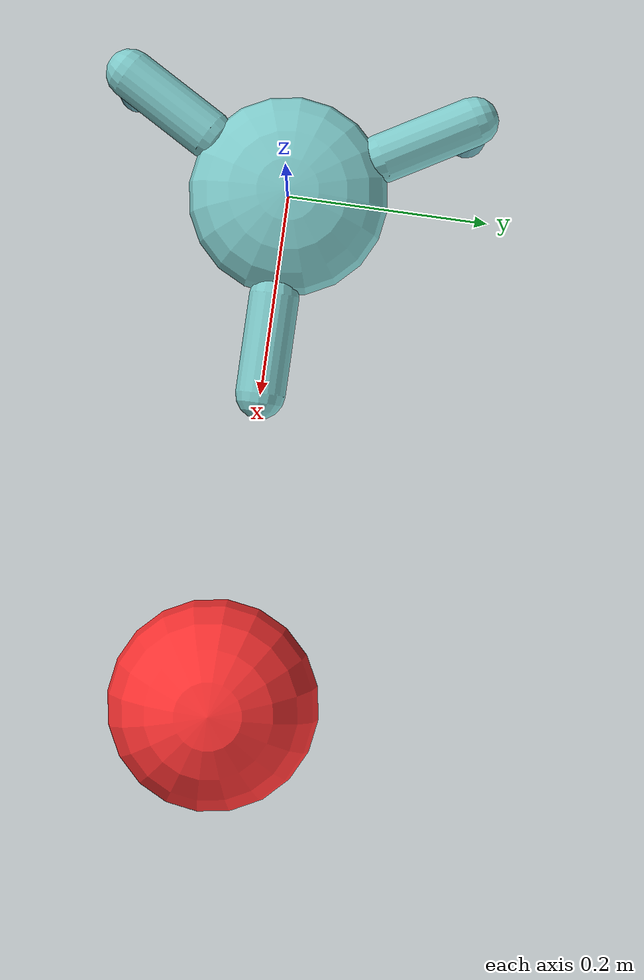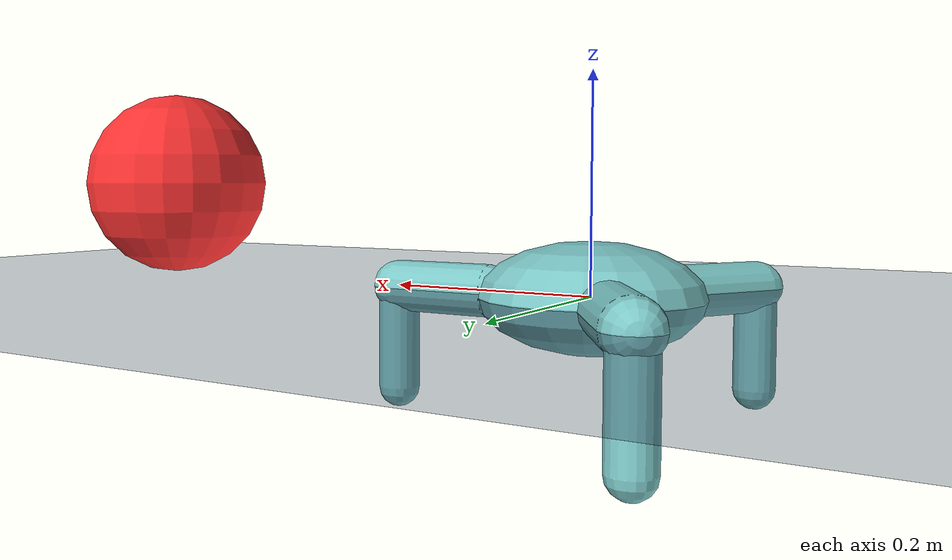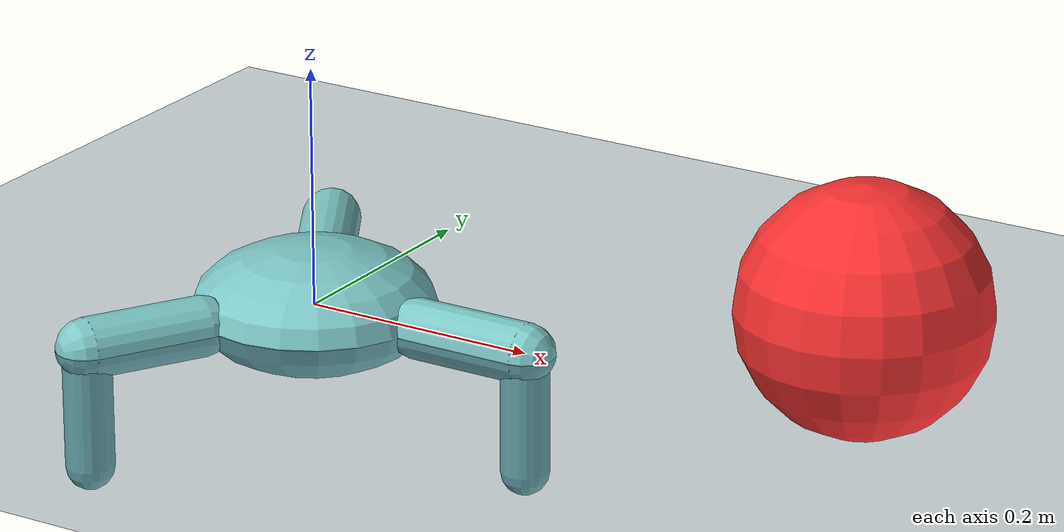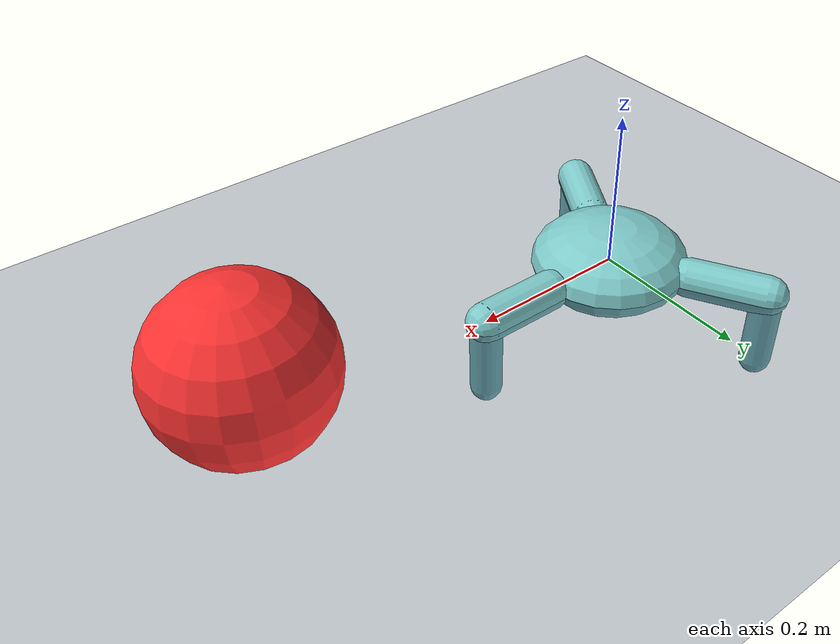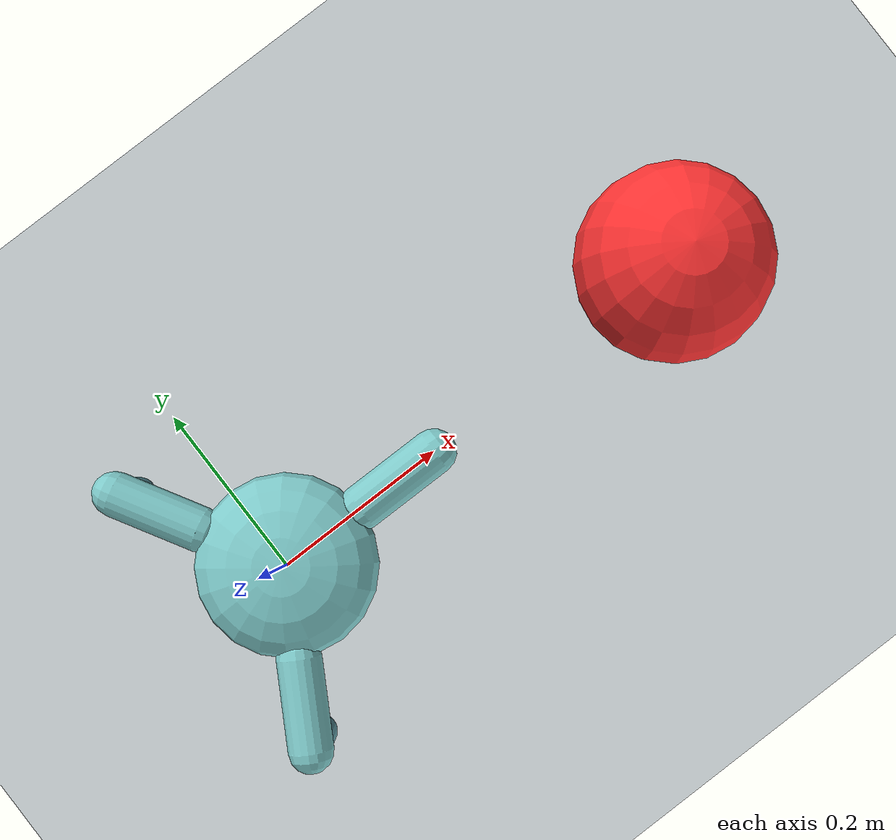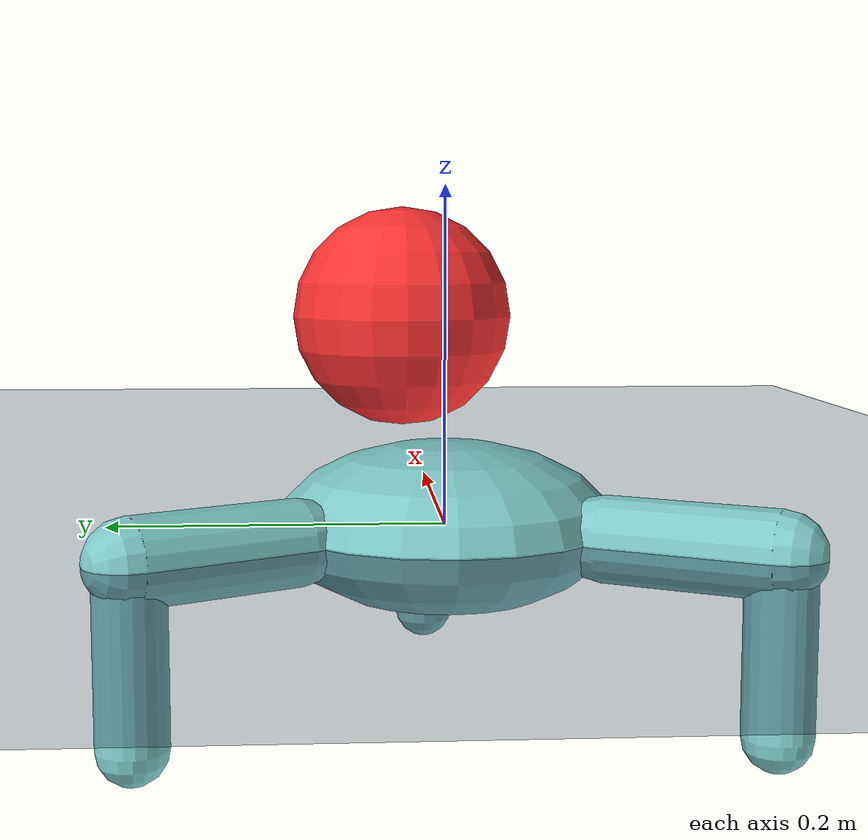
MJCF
<mujoco model="floor">
  <compiler boundmass="1.0000000000000001e-05" boundinertia="9.9999999999999994e-12" coordinate="local" angle="radian" eulerseq="xyz"/>
  <option timestep="0.002" cone="elliptic" noslip_iterations="5" noslip_tolerance="0"/>
  <visual>
    <headlight ambient="0.40000000000000002 0.40000000000000002 0.40000000000000002" diffuse="0.80000000000000004 0.80000000000000004 0.80000000000000004" specular="0.10000000000000001 0.10000000000000001 0.10000000000000001"/>
    <map znear="0.01"/>
    <scale forcewidth="0.01" contactwidth="0.059999999999999998" contactheight="0.01" jointwidth="0.01" framelength="0.29999999999999999" framewidth="0.01"/>
  </visual>
  <default>
    <default class="/"/>
    <default class="crawler/"/>
    <default class="crawler/leg/">
      <joint type="hinge" damping="2"/>
      <geom type="capsule" rgba="0.5 0.80000000000000004 0.80000000000000004 1"/>
      <position ctrllimited="true" ctrlrange="-0.5 0.5"/>
    </default>
    <default class="crawler/leg_1/">
      <joint type="hinge" damping="2"/>
      <geom type="capsule" rgba="0.5 0.80000000000000004 0.80000000000000004 1"/>
      <position ctrllimited="true" ctrlrange="-0.5 0.5"/>
    </default>
    <default class="crawler/leg_2/">
      <joint type="hinge" damping="2"/>
      <geom type="capsule" rgba="0.5 0.80000000000000004 0.80000000000000004 1"/>
      <position ctrllimited="true" ctrlrange="-0.5 0.5"/>
    </default>
  </default>
  <asset>
    <texture name="groundplane" type="2d" builtin="checker" rgb1="0.20000000000000001 0.29999999999999999 0.40000000000000002" rgb2="0.10000000000000001 0.20000000000000001 0.29999999999999999" mark="edge" markrgb="0.80000000000000004 0.80000000000000004 0.80000000000000004" width="200" height="200"/>
    <material name="groundplane" class="/" texture="groundplane" texrepeat="2 2" texuniform="true" reflectance="0.20000000000000001"/>
  </asset>
  <worldbody>
    <geom name="groundplane" class="/" type="plane" size="8 8 0.25" material="groundplane"/>
    <camera name="top_camera" class="/" fovy="10.058147163570894" pos="0 0 100" quat="1 0 0 0"/>
    <light name="//unnamed_light_0" class="/" pos="0 0 4"/>
    <body name="crawler/">
      <freejoint name="crawler/"/>
      <geom name="crawler/torso" class="crawler/" type="ellipsoid" size="0.10000000000000001 0.10000000000000001 0.050000000000000003" rgba="0.5 0.80000000000000004 0.80000000000000004 1"/>
      <site name="crawler//unnamed_site_0" class="crawler/" pos="0.10000000000000001 0 0" euler="0 0 0"/>
      <body pos="0.10000000000000001 0 0" euler="0 0 0" name="crawler/leg/">
        <body name="crawler/leg/thigh">
          <joint name="crawler/leg//unnamed_joint_0" class="crawler/leg/" axis="0 0 1"/>
          <geom name="crawler/leg//unnamed_geom_0" class="crawler/leg/" size="0.025000000000000001" fromto="0 0 0 0.10000000000000001 0 0"/>
          <body name="crawler/leg/shin" pos="0.10000000000000001 0 0">
            <joint name="crawler/leg//unnamed_joint_1" class="crawler/leg/" axis="0 1 0"/>
            <geom name="crawler/leg//unnamed_geom_1" class="crawler/leg/" size="0.02" fromto="0 0 0 0 0 -0.10000000000000001"/>
          </body>
        </body>
      </body>
      <site name="crawler//unnamed_site_1" class="crawler/" pos="-0.049999999999999989 0.086602540378443879 0" euler="0 0 2.0943951023931953"/>
      <body pos="-0.049999999999999989 0.086602540378443879 0" euler="0 0 2.0943951023931953" name="crawler/leg_1/">
        <body name="crawler/leg_1/thigh">
          <joint name="crawler/leg_1//unnamed_joint_0" class="crawler/leg_1/" axis="0 0 1"/>
          <geom name="crawler/leg_1//unnamed_geom_0" class="crawler/leg_1/" size="0.025000000000000001" fromto="0 0 0 0.10000000000000001 0 0"/>
          <body name="crawler/leg_1/shin" pos="0.10000000000000001 0 0">
            <joint name="crawler/leg_1//unnamed_joint_1" class="crawler/leg_1/" axis="0 1 0"/>
            <geom name="crawler/leg_1//unnamed_geom_1" class="crawler/leg_1/" size="0.02" fromto="0 0 0 0 0 -0.10000000000000001"/>
          </body>
        </body>
      </body>
      <site name="crawler//unnamed_site_2" class="crawler/" pos="-0.050000000000000044 -0.086602540378443837 0" euler="0 0 4.1887902047863905"/>
      <body pos="-0.050000000000000044 -0.086602540378443837 0" euler="0 0 4.1887902047863905" name="crawler/leg_2/">
        <body name="crawler/leg_2/thigh">
          <joint name="crawler/leg_2//unnamed_joint_0" class="crawler/leg_2/" axis="0 0 1"/>
          <geom name="crawler/leg_2//unnamed_geom_0" class="crawler/leg_2/" size="0.025000000000000001" fromto="0 0 0 0.10000000000000001 0 0"/>
          <body name="crawler/leg_2/shin" pos="0.10000000000000001 0 0">
            <joint name="crawler/leg_2//unnamed_joint_1" class="crawler/leg_2/" axis="0 1 0"/>
            <geom name="crawler/leg_2//unnamed_geom_1" class="crawler/leg_2/" size="0.02" fromto="0 0 0 0 0 -0.10000000000000001"/>
          </body>
        </body>
      </body>
    </body>
    <site name="target_site" class="/" type="sphere" rgba="1 0.20000000000000001 0.20000000000000001 1" size="0.10000000000000001 0.10000000000000001 0.10000000000000001" pos="0.5 0 0.10000000000000001"/>
  </worldbody>
  <actuator>
    <position name="crawler/leg/hip_joint" class="crawler/leg/" joint="crawler/leg//unnamed_joint_0" kp="10"/>
    <position name="crawler/leg/knee_joint" class="crawler/leg/" joint="crawler/leg//unnamed_joint_1" kp="10"/>
    <position name="crawler/leg_1/hip_joint" class="crawler/leg_1/" joint="crawler/leg_1//unnamed_joint_0" kp="10"/>
    <position name="crawler/leg_1/knee_joint" class="crawler/leg_1/" joint="crawler/leg_1//unnamed_joint_1" kp="10"/>
    <position name="crawler/leg_2/hip_joint" class="crawler/leg_2/" joint="crawler/leg_2//unnamed_joint_0" kp="10"/>
    <position name="crawler/leg_2/knee_joint" class="crawler/leg_2/" joint="crawler/leg_2//unnamed_joint_1" kp="10"/>
  </actuator>
  <sensor>
    <framequat name="crawler/orientation" objtype="geom" objname="crawler/torso"/>
    <framelinvel name="crawler/linear_velocity" objtype="geom" objname="crawler/torso"/>
    <frameangvel name="crawler/angular_velocity" objtype="geom" objname="crawler/torso"/>
  </sensor>
</mujoco>
